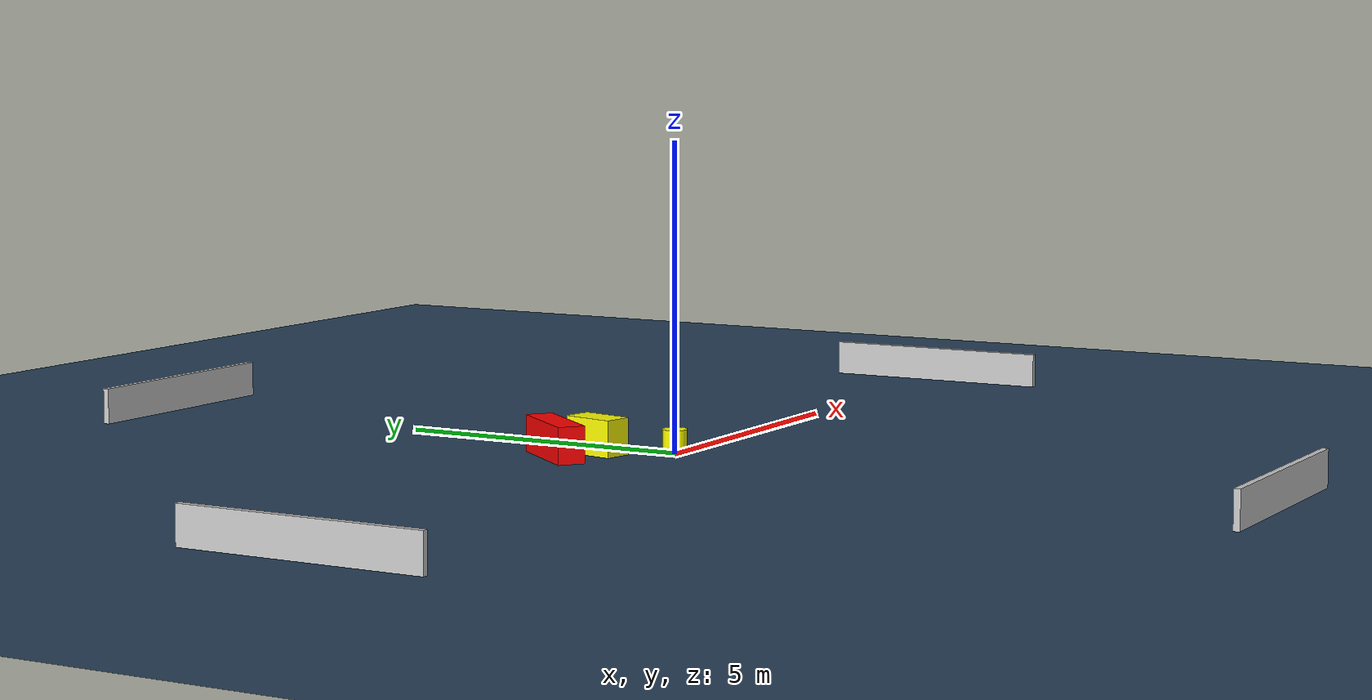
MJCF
<?xml version="1.0" ?>
<mujoco model="generated_environment">
  <option timestep="0.01" integrator="RK4" cone="elliptic"/>
  <default>
    <geom density="1"/>
  </default>
  <asset>
    <texture builtin="gradient" height="3072" name="skybox" rgb1="0.3 0.5 0.7" rgb2="0 0 0" type="skybox" width="512"/>
    <texture builtin="checker" height="300" name="groundplane" rgb1="0.2 0.3 0.4" rgb2="0.1 0.2 0.3" type="2d" width="300"/>
    <material name="groundplane" reflectance="0.2" texrepeat="5 5" texture="groundplane"/>
  </asset>
  <worldbody>
    <light dir="0 0 -1" directional="true" pos="0 0 1.5"/>
    <geom condim="3" friction="0.5 0.005 0.001" material="groundplane" name="floor" pos="0 0 0" size="0 0 0.05" type="plane"/>
    <body name="walls">
      <geom name="wall_1" condim="4" pos="-10.0 0.0 0.3" rgba="0.800000011920929 0.800000011920929 0.800000011920929 1.0" size="0.05 2.0 0.3" type="box"/>
      <geom name="wall_2" condim="4" pos="10.0 0.0 0.3" rgba="0.800000011920929 0.800000011920929 0.800000011920929 1.0" size="0.05 2.0 0.3" type="box"/>
      <geom name="wall_3" condim="4" pos="0.0 -10.0 0.3" rgba="0.800000011920929 0.800000011920929 0.800000011920929 1.0" size="2.0 0.05 0.3" type="box"/>
      <geom name="wall_4" condim="4" pos="0.0 10.0 0.3" rgba="0.800000011920929 0.800000011920929 0.800000011920929 1.0" size="2.0 0.05 0.3" type="box"/>
    </body>
    <body name="robot">
      <joint name="joint_x" type="slide" pos="0 0 0" axis="1 0 0"/>
      <joint name="joint_y" type="slide" pos="0 0 0" axis="0 1 0"/>
      <geom name="robot" type="cylinder" pos="0.0 0.0 0.2" size="0.2 0.2 0.0" mass="5.0" friction="1.0 0.005 0.0001" condim="4" rgba="1.0 1.0 0.0 1.0"/>
    </body>
    <body name="obstacle_1_movable">
      <geom name="obstacle_1_movable" condim="4" pos="-0.5961624792492257 1.0827297598956054 0.3" euler="0 0 347.9031518771537" friction="0.0 0.005 0.001" rgba="1.0 1.0 0.0 1.0" size="0.2452715790761311 0.4478977227950566 0.3" type="box" mass="0.1"/>
      <joint type="free"/>
    </body>
    <body name="obstacle_2_static">
      <geom name="obstacle_2_static" condim="4" pos="-1.255845917200219 1.4719373059915053 0.3" euler="0 0 321.7636950213474" friction="0.0 0.005 0.001" rgba="1.0 0.0 0.0 1.0" size="0.22270220643797256 0.7486971782272063 0.3" type="box"/>
    </body>
  </worldbody>
  <actuator>
    <motor name="actuator_x" joint="joint_x" gear="1" ctrlrange="-1 1"/>
    <motor name="actuator_y" joint="joint_y" gear="1" ctrlrange="-1 1"/>
  </actuator>
</mujoco>
